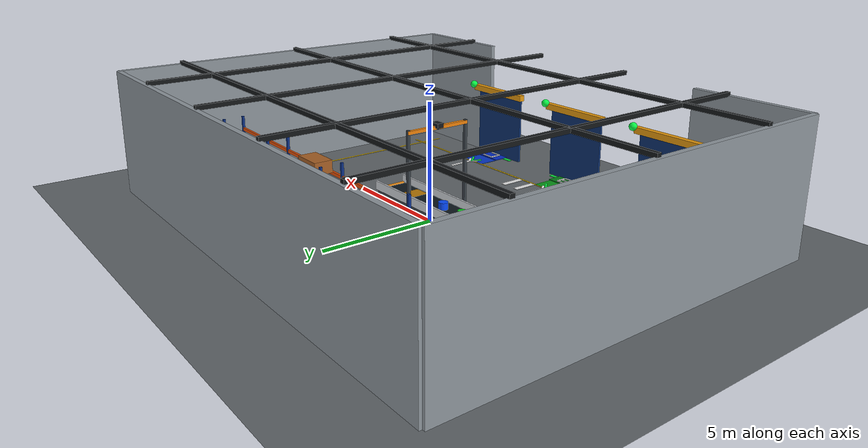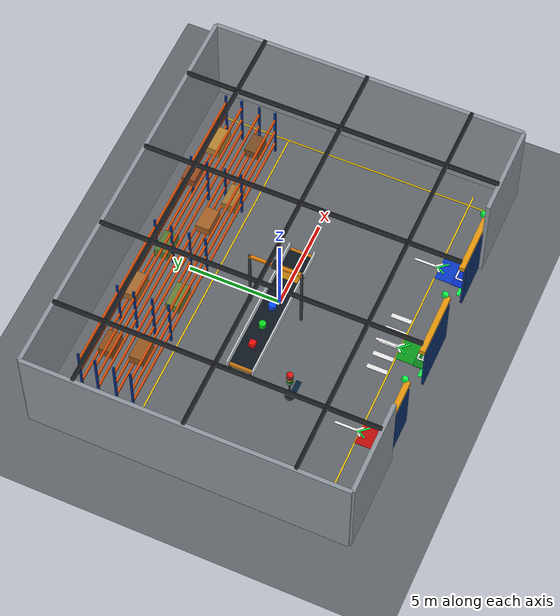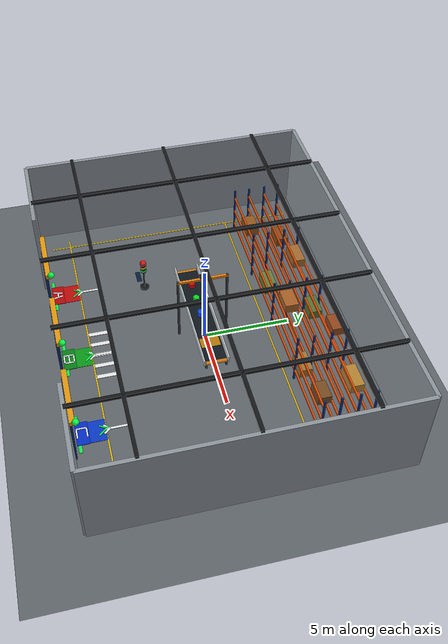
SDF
<sdf version="1.10">
 <world name="factory_test">
  <model name="ground_plane">
   <static>true</static>
   <link name="link">
    <collision name="collision">
     <geometry><plane><normal>0 0 1</normal><size>24 20</size></plane></geometry>
    </collision>
    <visual name="visual">
     <geometry><plane><normal>0 0 1</normal><size>24 20</size></plane></geometry>
     <material><ambient>0.28 0.3 0.32 1</ambient><diffuse>0.38 0.4 0.42 1</diffuse></material>
    </visual>
   </link>
  </model>
  <model name="sorting_conveyor">
   <static>true</static>
   <pose>-1 0 0 0 0 0</pose>
   <link name="conveyor">
    <collision name="belt_collision">
     <pose>0 0 0.76 0 0 0</pose>
     <geometry><box><size>7.5 1.25 0.12</size></box></geometry>
     <surface><friction><ode><mu>0.7</mu><mu2>100</mu2><fdir1>0 1 0</fdir1></ode></friction></surface>
    </collision>
    <visual name="belt">
     <pose>0 0 0.76 0 0 0</pose>
     <geometry><box><size>7.5 1.25 0.12</size></box></geometry>
     <material>
      <ambient>0.035 0.055 0.075 1</ambient>
      <diffuse>0.055 0.09 0.12 1</diffuse>
      <specular>0.35 0.35 0.35 1</specular>
     </material>
    </visual>
    <visual name="left_rail">
     <pose>0 0.69 0.94 0 0 0</pose>
     <geometry><box><size>7.7 0.08 0.38</size></box></geometry>
     <material><ambient>0.75 0.78 0.8 1</ambient><diffuse>0.82 0.84 0.86 1</diffuse></material>
    </visual>
    <visual name="right_rail">
     <pose>0 -0.69 0.94 0 0 0</pose>
     <geometry><box><size>7.7 0.08 0.38</size></box></geometry>
     <material><ambient>0.75 0.78 0.8 1</ambient><diffuse>0.82 0.84 0.86 1</diffuse></material>
    </visual>
    <visual name="frame_left">
     <pose>0 0.57 0.58 0 0 0</pose>
     <geometry><box><size>7.6 0.12 0.24</size></box></geometry>
     <material><ambient>0.18 0.21 0.24 1</ambient><diffuse>0.25 0.29 0.32 1</diffuse></material>
    </visual>
    <visual name="frame_right">
     <pose>0 -0.57 0.58 0 0 0</pose>
     <geometry><box><size>7.6 0.12 0.24</size></box></geometry>
     <material><ambient>0.18 0.21 0.24 1</ambient><diffuse>0.25 0.29 0.32 1</diffuse></material>
    </visual>
    <visual name="front_roller">
     <pose>-3.69 0 0.76 1.5708 0 0</pose>
     <geometry><cylinder><radius>0.11</radius><length>1.2</length></cylinder></geometry>
     <material><diffuse>0.8 0.48 0.08 1</diffuse></material>
    </visual>
    <visual name="rear_roller">
     <pose>3.69 0 0.76 1.5708 0 0</pose>
     <geometry><cylinder><radius>0.11</radius><length>1.2</length></cylinder></geometry>
     <material><diffuse>0.8 0.48 0.08 1</diffuse></material>
    </visual>
    <visual name="leg_1_left">
     <pose>-2.8 0.48 0.3 0 0 0</pose>
     <geometry><box><size>0.14 0.14 0.6</size></box></geometry>
     <material><diffuse>0.26 0.29 0.31 1</diffuse></material>
    </visual>
    <visual name="leg_1_right">
     <pose>-2.8 -0.48 0.3 0 0 0</pose>
     <geometry><box><size>0.14 0.14 0.6</size></box></geometry>
     <material><diffuse>0.26 0.29 0.31 1</diffuse></material>
    </visual>
    <visual name="leg_2_left">
     <pose>0 0.48 0.3 0 0 0</pose>
     <geometry><box><size>0.14 0.14 0.6</size></box></geometry>
     <material><diffuse>0.26 0.29 0.31 1</diffuse></material>
    </visual>
    <visual name="leg_2_right">
     <pose>0 -0.48 0.3 0 0 0</pose>
     <geometry><box><size>0.14 0.14 0.6</size></box></geometry>
     <material><diffuse>0.26 0.29 0.31 1</diffuse></material>
    </visual>
    <visual name="leg_3_left">
     <pose>2.8 0.48 0.3 0 0 0</pose>
     <geometry><box><size>0.14 0.14 0.6</size></box></geometry>
     <material><diffuse>0.26 0.29 0.31 1</diffuse></material>
    </visual>
    <visual name="leg_3_right">
     <pose>2.8 -0.48 0.3 0 0 0</pose>
     <geometry><box><size>0.14 0.14 0.6</size></box></geometry>
     <material><diffuse>0.26 0.29 0.31 1</diffuse></material>
    </visual>
    <visual name="pickup_zone">
     <pose>2.25 0 0.825 0 0 0</pose>
     <geometry><box><size>0.7 1.12 0.01</size></box></geometry>
     <material><ambient>0.95 0.62 0.05 0.75</ambient><diffuse>1 0.66 0.05 0.75</diffuse></material>
     <transparency>0.25</transparency>
    </visual>
   </link>
   <plugin filename="gz-sim-track-controller-system" name="gz::sim::systems::TrackController">
    <link>conveyor</link>
    <velocity_topic>/conveyor/track_cmd_vel</velocity_topic>
    <odometry_topic>/conveyor/odometry</odometry_topic>
    <odometry_publish_frequency>10</odometry_publish_frequency>
    <max_command_age>0.5</max_command_age>
    <min_velocity>-0.5</min_velocity>
    <max_velocity>0.5</max_velocity>
    <min_acceleration>-0.8</min_acceleration>
    <max_acceleration>0.8</max_acceleration>
   </plugin>
  </model>
  <model name="item_a_red_cube">
   <pose>-3.3 0 0.96 0 0 0</pose>
   <link name="item">
    <inertial><mass>0.25</mass><inertia><ixx>0.0027</ixx><iyy>0.0027</iyy><izz>0.0027</izz></inertia></inertial>
    <collision name="collision"><geometry><box><size>0.32 0.32 0.32</size></box></geometry></collision>
    <visual name="visual">
     <geometry><box><size>0.32 0.32 0.32</size></box></geometry>
     <material><ambient>0.75 0.03 0.03 1</ambient><diffuse>0.95 0.04 0.04 1</diffuse></material>
    </visual>
   </link>
  </model>
  <model name="item_b_green_cylinder">
   <pose>-2.1 0 0.96 0 0 0</pose>
   <link name="item">
    <inertial><mass>0.25</mass><inertia><ixx>0.0027</ixx><iyy>0.0027</iyy><izz>0.0027</izz></inertia></inertial>
    <collision name="collision">
     <geometry><cylinder><radius>0.18</radius><length>0.32</length></cylinder></geometry>
    </collision>
    <visual name="visual">
     <geometry><cylinder><radius>0.18</radius><length>0.32</length></cylinder></geometry>
     <material><ambient>0.03 0.55 0.08 1</ambient><diffuse>0.04 0.85 0.12 1</diffuse></material>
    </visual>
   </link>
  </model>
  <model name="item_c_blue_hex">
   <pose>-0.9 0 0.96 0 0 0</pose>
   <link name="item">
    <inertial><mass>0.25</mass><inertia><ixx>0.0027</ixx><iyy>0.0027</iyy><izz>0.0027</izz></inertia></inertial>
    <collision name="collision">
     <geometry><cylinder><radius>0.2</radius><length>0.32</length></cylinder></geometry>
    </collision>
    <visual name="visual">
     <geometry><cylinder><radius>0.2</radius><length>0.32</length></cylinder></geometry>
     <material><ambient>0.02 0.18 0.75 1</ambient><diffuse>0.03 0.3 1 1</diffuse></material>
    </visual>
   </link>
  </model>
  <model name="overhead_rgbd_camera">
   <static>true</static>
   <pose>-0.5 0 4.2 0 0 0</pose>
   <link name="camera_link">
    <visual name="body">
     <geometry><box><size>0.42 0.3 0.2</size></box></geometry>
     <material><diffuse>0.08 0.1 0.12 1</diffuse></material>
    </visual>
    <visual name="lens">
     <pose>0 0 -0.13 0 0 0</pose>
     <geometry><cylinder><radius>0.09</radius><length>0.08</length></cylinder></geometry>
     <material><diffuse>0.02 0.12 0.25 1</diffuse></material>
    </visual>
    <sensor name="rgbd_camera" type="rgbd_camera">
     <pose>0 0 -0.15 0 1.5708 0</pose>
     <always_on>true</always_on>
     <update_rate>15</update_rate>
     <topic>/factory/camera</topic>
     <camera>
      <horizontal_fov>1.35</horizontal_fov>
      <image><width>640</width><height>480</height><format>R8G8B8</format></image>
      <clip><near>0.1</near><far>12</far></clip>
      <depth_camera><clip><near>0.1</near><far>12</far></clip></depth_camera>
     </camera>
    </sensor>
   </link>
  </model>
  <model name="camera_gantry">
   <static>true</static>
   <link name="gantry">
    <visual name="left_post">
     <pose>-0.5 1.4 2.1 0 0 0</pose>
     <geometry><box><size>0.12 0.12 4.2</size></box></geometry>
     <material><diffuse>0.22 0.25 0.28 1</diffuse></material>
    </visual>
    <visual name="right_post">
     <pose>-0.5 -1.4 2.1 0 0 0</pose>
     <geometry><box><size>0.12 0.12 4.2</size></box></geometry>
     <material><diffuse>0.22 0.25 0.28 1</diffuse></material>
    </visual>
    <visual name="crossbeam">
     <pose>-0.5 0 4.1 0 0 0</pose>
     <geometry><box><size>0.14 2.9 0.14</size></box></geometry>
     <material><diffuse>0.95 0.52 0.04 1</diffuse></material>
    </visual>
   </link>
  </model>
  <model name="warehouse_zones">
   <static>true</static>
   <link name="zones">
    <visual name="zone_a">
     <pose>-5.2 -7.1 0.018 0 0 0</pose>
     <geometry><box><size>1.35 1.0 0.025</size></box></geometry>
     <material><diffuse>0.75 0.04 0.04 1</diffuse></material>
    </visual>
    <visual name="zone_b">
     <pose>0 -7.1 0.018 0 0 0</pose>
     <geometry><box><size>1.35 1.0 0.025</size></box></geometry>
     <material><diffuse>0.04 0.6 0.1 1</diffuse></material>
    </visual>
    <visual name="zone_c">
     <pose>5.2 -7.1 0.018 0 0 0</pose>
     <geometry><box><size>1.35 1.0 0.025</size></box></geometry>
     <material><diffuse>0.03 0.22 0.78 1</diffuse></material>
    </visual>
   </link>
  </model>
  <model name="warehouse_building">
   <static>true</static>
   <link name="shell">
    <collision name="west_wall_collision">
     <pose>-11 0 2.75 0 0 0</pose>
     <geometry><box><size>0.22 17 5.5</size></box></geometry>
    </collision>
    <collision name="east_wall_collision">
     <pose>11 0 2.75 0 0 0</pose>
     <geometry><box><size>0.22 17 5.5</size></box></geometry>
    </collision>
    <collision name="north_wall_collision">
     <pose>0 8.5 2.75 0 0 0</pose>
     <geometry><box><size>22 0.22 5.5</size></box></geometry>
    </collision>
    <collision name="south_wall_left_collision">
     <pose>-8.5 -8.5 2.75 0 0 0</pose>
     <geometry><box><size>5 0.22 5.5</size></box></geometry>
    </collision>
    <collision name="south_wall_right_collision">
     <pose>8.5 -8.5 2.75 0 0 0</pose>
     <geometry><box><size>5 0.22 5.5</size></box></geometry>
    </collision>
    <visual name="west_wall">
     <pose>-11 0 2.75 0 0 0</pose>
     <geometry><box><size>0.22 17 5.5</size></box></geometry>
     <material><diffuse>0.56 0.59 0.62 1</diffuse></material>
    </visual>
    <visual name="east_wall">
     <pose>11 0 2.75 0 0 0</pose>
     <geometry><box><size>0.22 17 5.5</size></box></geometry>
     <material><diffuse>0.56 0.59 0.62 1</diffuse></material>
    </visual>
    <visual name="north_wall">
     <pose>0 8.5 2.75 0 0 0</pose>
     <geometry><box><size>22 0.22 5.5</size></box></geometry>
     <material><diffuse>0.56 0.59 0.62 1</diffuse></material>
    </visual>
    <visual name="south_wall_left">
     <pose>-8.5 -8.5 2.75 0 0 0</pose>
     <geometry><box><size>5 0.22 5.5</size></box></geometry>
     <material><diffuse>0.56 0.59 0.62 1</diffuse></material>
    </visual>
    <visual name="south_wall_right">
     <pose>8.5 -8.5 2.75 0 0 0</pose>
     <geometry><box><size>5 0.22 5.5</size></box></geometry>
     <material><diffuse>0.56 0.59 0.62 1</diffuse></material>
    </visual>
    <visual name="roof_beam_west">
     <pose>-7.5 0 5.55 0 0 0</pose>
     <geometry><box><size>0.18 17 0.18</size></box></geometry>
     <material><diffuse>0.08 0.09 0.1 1</diffuse></material>
    </visual>
    <visual name="roof_beam_mid_west">
     <pose>-2.5 0 5.55 0 0 0</pose>
     <geometry><box><size>0.18 17 0.18</size></box></geometry>
     <material><diffuse>0.08 0.09 0.1 1</diffuse></material>
    </visual>
    <visual name="roof_beam_mid_east">
     <pose>2.5 0 5.55 0 0 0</pose>
     <geometry><box><size>0.18 17 0.18</size></box></geometry>
     <material><diffuse>0.08 0.09 0.1 1</diffuse></material>
    </visual>
    <visual name="roof_beam_east">
     <pose>7.5 0 5.55 0 0 0</pose>
     <geometry><box><size>0.18 17 0.18</size></box></geometry>
     <material><diffuse>0.08 0.09 0.1 1</diffuse></material>
    </visual>
    <visual name="roof_cross_north">
     <pose>0 5.7 5.55 0 0 0</pose>
     <geometry><box><size>22 0.18 0.18</size></box></geometry>
     <material><diffuse>0.08 0.09 0.1 1</diffuse></material>
    </visual>
    <visual name="roof_cross_center">
     <pose>0 0 5.55 0 0 0</pose>
     <geometry><box><size>22 0.18 0.18</size></box></geometry>
     <material><diffuse>0.08 0.09 0.1 1</diffuse></material>
    </visual>
    <visual name="roof_cross_south">
     <pose>0 -5.7 5.55 0 0 0</pose>
     <geometry><box><size>22 0.18 0.18</size></box></geometry>
     <material><diffuse>0.08 0.09 0.1 1</diffuse></material>
    </visual>
    <visual name="dock_door_a">
     <pose>-5.2 -8.37 1.55 0 0 0</pose>
     <geometry><box><size>3.0 0.12 3.1</size></box></geometry>
     <material><diffuse>0.04 0.18 0.42 1</diffuse></material>
    </visual>
    <visual name="dock_door_b">
     <pose>0 -8.37 1.55 0 0 0</pose>
     <geometry><box><size>3.0 0.12 3.1</size></box></geometry>
     <material><diffuse>0.04 0.18 0.42 1</diffuse></material>
    </visual>
    <visual name="dock_door_c">
     <pose>5.2 -8.37 1.55 0 0 0</pose>
     <geometry><box><size>3.0 0.12 3.1</size></box></geometry>
     <material><diffuse>0.04 0.18 0.42 1</diffuse></material>
    </visual>
    <visual name="dock_header_a">
     <pose>-5.2 -8.25 3.3 0 0 0</pose>
     <geometry><box><size>3.4 0.28 0.28</size></box></geometry>
     <material><diffuse>0.9 0.6 0.05 1</diffuse></material>
    </visual>
    <visual name="dock_header_b">
     <pose>0 -8.25 3.3 0 0 0</pose>
     <geometry><box><size>3.4 0.28 0.28</size></box></geometry>
     <material><diffuse>0.9 0.6 0.05 1</diffuse></material>
    </visual>
    <visual name="dock_header_c">
     <pose>5.2 -8.25 3.3 0 0 0</pose>
     <geometry><box><size>3.4 0.28 0.28</size></box></geometry>
     <material><diffuse>0.9 0.6 0.05 1</diffuse></material>
    </visual>
   </link>
  </model>
  <model name="warehouse_racking">
   <static>true</static>
   <link name="racks">
    <collision name="rack_north_collision">
     <pose>0 6.4 1.65 0 0 0</pose>
     <geometry><box><size>17.6 1.0 3.3</size></box></geometry>
    </collision>
    <collision name="rack_south_collision">
     <pose>0 4.5 1.65 0 0 0</pose>
     <geometry><box><size>17.6 1.0 3.3</size></box></geometry>
    </collision>
    <visual name="n_post_1a">
     <pose>-8.5 5.95 1.65 0 0 0</pose>
     <geometry><box><size>0.1 0.1 3.3</size></box></geometry>
     <material><diffuse>0.05 0.2 0.55 1</diffuse></material>
    </visual>
    <visual name="n_post_1b">
     <pose>-8.5 6.85 1.65 0 0 0</pose>
     <geometry><box><size>0.1 0.1 3.3</size></box></geometry>
     <material><diffuse>0.05 0.2 0.55 1</diffuse></material>
    </visual>
    <visual name="n_post_2a">
     <pose>-4.25 5.95 1.65 0 0 0</pose>
     <geometry><box><size>0.1 0.1 3.3</size></box></geometry>
     <material><diffuse>0.05 0.2 0.55 1</diffuse></material>
    </visual>
    <visual name="n_post_2b">
     <pose>-4.25 6.85 1.65 0 0 0</pose>
     <geometry><box><size>0.1 0.1 3.3</size></box></geometry>
     <material><diffuse>0.05 0.2 0.55 1</diffuse></material>
    </visual>
    <visual name="n_post_3a">
     <pose>0 5.95 1.65 0 0 0</pose>
     <geometry><box><size>0.1 0.1 3.3</size></box></geometry>
     <material><diffuse>0.05 0.2 0.55 1</diffuse></material>
    </visual>
    <visual name="n_post_3b">
     <pose>0 6.85 1.65 0 0 0</pose>
     <geometry><box><size>0.1 0.1 3.3</size></box></geometry>
     <material><diffuse>0.05 0.2 0.55 1</diffuse></material>
    </visual>
    <visual name="n_post_4a">
     <pose>4.25 5.95 1.65 0 0 0</pose>
     <geometry><box><size>0.1 0.1 3.3</size></box></geometry>
     <material><diffuse>0.05 0.2 0.55 1</diffuse></material>
    </visual>
    <visual name="n_post_4b">
     <pose>4.25 6.85 1.65 0 0 0</pose>
     <geometry><box><size>0.1 0.1 3.3</size></box></geometry>
     <material><diffuse>0.05 0.2 0.55 1</diffuse></material>
    </visual>
    <visual name="n_post_5a">
     <pose>8.5 5.95 1.65 0 0 0</pose>
     <geometry><box><size>0.1 0.1 3.3</size></box></geometry>
     <material><diffuse>0.05 0.2 0.55 1</diffuse></material>
    </visual>
    <visual name="n_post_5b">
     <pose>8.5 6.85 1.65 0 0 0</pose>
     <geometry><box><size>0.1 0.1 3.3</size></box></geometry>
     <material><diffuse>0.05 0.2 0.55 1</diffuse></material>
    </visual>
    <visual name="s_post_1a">
     <pose>-8.5 4.05 1.65 0 0 0</pose>
     <geometry><box><size>0.1 0.1 3.3</size></box></geometry>
     <material><diffuse>0.05 0.2 0.55 1</diffuse></material>
    </visual>
    <visual name="s_post_1b">
     <pose>-8.5 4.95 1.65 0 0 0</pose>
     <geometry><box><size>0.1 0.1 3.3</size></box></geometry>
     <material><diffuse>0.05 0.2 0.55 1</diffuse></material>
    </visual>
    <visual name="s_post_2a">
     <pose>-4.25 4.05 1.65 0 0 0</pose>
     <geometry><box><size>0.1 0.1 3.3</size></box></geometry>
     <material><diffuse>0.05 0.2 0.55 1</diffuse></material>
    </visual>
    <visual name="s_post_2b">
     <pose>-4.25 4.95 1.65 0 0 0</pose>
     <geometry><box><size>0.1 0.1 3.3</size></box></geometry>
     <material><diffuse>0.05 0.2 0.55 1</diffuse></material>
    </visual>
    <visual name="s_post_3a">
     <pose>0 4.05 1.65 0 0 0</pose>
     <geometry><box><size>0.1 0.1 3.3</size></box></geometry>
     <material><diffuse>0.05 0.2 0.55 1</diffuse></material>
    </visual>
    <visual name="s_post_3b">
     <pose>0 4.95 1.65 0 0 0</pose>
     <geometry><box><size>0.1 0.1 3.3</size></box></geometry>
     <material><diffuse>0.05 0.2 0.55 1</diffuse></material>
    </visual>
    <visual name="s_post_4a">
     <pose>4.25 4.05 1.65 0 0 0</pose>
     <geometry><box><size>0.1 0.1 3.3</size></box></geometry>
     <material><diffuse>0.05 0.2 0.55 1</diffuse></material>
    </visual>
    <visual name="s_post_4b">
     <pose>4.25 4.95 1.65 0 0 0</pose>
     <geometry><box><size>0.1 0.1 3.3</size></box></geometry>
     <material><diffuse>0.05 0.2 0.55 1</diffuse></material>
    </visual>
    <visual name="s_post_5a">
     <pose>8.5 4.05 1.65 0 0 0</pose>
     <geometry><box><size>0.1 0.1 3.3</size></box></geometry>
     <material><diffuse>0.05 0.2 0.55 1</diffuse></material>
    </visual>
    <visual name="s_post_5b">
     <pose>8.5 4.95 1.65 0 0 0</pose>
     <geometry><box><size>0.1 0.1 3.3</size></box></geometry>
     <material><diffuse>0.05 0.2 0.55 1</diffuse></material>
    </visual>
    <visual name="n_beam_low_front">
     <pose>0 5.95 0.72 0 0 0</pose>
     <geometry><box><size>17 0.09 0.14</size></box></geometry>
     <material><diffuse>0.92 0.32 0.03 1</diffuse></material>
    </visual>
    <visual name="n_beam_low_back">
     <pose>0 6.85 0.72 0 0 0</pose>
     <geometry><box><size>17 0.09 0.14</size></box></geometry>
     <material><diffuse>0.92 0.32 0.03 1</diffuse></material>
    </visual>
    <visual name="n_beam_mid_front">
     <pose>0 5.95 1.72 0 0 0</pose>
     <geometry><box><size>17 0.09 0.14</size></box></geometry>
     <material><diffuse>0.92 0.32 0.03 1</diffuse></material>
    </visual>
    <visual name="n_beam_mid_back">
     <pose>0 6.85 1.72 0 0 0</pose>
     <geometry><box><size>17 0.09 0.14</size></box></geometry>
     <material><diffuse>0.92 0.32 0.03 1</diffuse></material>
    </visual>
    <visual name="n_beam_top_front">
     <pose>0 5.95 2.72 0 0 0</pose>
     <geometry><box><size>17 0.09 0.14</size></box></geometry>
     <material><diffuse>0.92 0.32 0.03 1</diffuse></material>
    </visual>
    <visual name="n_beam_top_back">
     <pose>0 6.85 2.72 0 0 0</pose>
     <geometry><box><size>17 0.09 0.14</size></box></geometry>
     <material><diffuse>0.92 0.32 0.03 1</diffuse></material>
    </visual>
    <visual name="s_beam_low_front">
     <pose>0 4.05 0.72 0 0 0</pose>
     <geometry><box><size>17 0.09 0.14</size></box></geometry>
     <material><diffuse>0.92 0.32 0.03 1</diffuse></material>
    </visual>
    <visual name="s_beam_low_back">
     <pose>0 4.95 0.72 0 0 0</pose>
     <geometry><box><size>17 0.09 0.14</size></box></geometry>
     <material><diffuse>0.92 0.32 0.03 1</diffuse></material>
    </visual>
    <visual name="s_beam_mid_front">
     <pose>0 4.05 1.72 0 0 0</pose>
     <geometry><box><size>17 0.09 0.14</size></box></geometry>
     <material><diffuse>0.92 0.32 0.03 1</diffuse></material>
    </visual>
    <visual name="s_beam_mid_back">
     <pose>0 4.95 1.72 0 0 0</pose>
     <geometry><box><size>17 0.09 0.14</size></box></geometry>
     <material><diffuse>0.92 0.32 0.03 1</diffuse></material>
    </visual>
    <visual name="s_beam_top_front">
     <pose>0 4.05 2.72 0 0 0</pose>
     <geometry><box><size>17 0.09 0.14</size></box></geometry>
     <material><diffuse>0.92 0.32 0.03 1</diffuse></material>
    </visual>
    <visual name="s_beam_top_back">
     <pose>0 4.95 2.72 0 0 0</pose>
     <geometry><box><size>17 0.09 0.14</size></box></geometry>
     <material><diffuse>0.92 0.32 0.03 1</diffuse></material>
    </visual>
    <visual name="cargo_n_1">
     <pose>-6.2 6.4 1.03 0 0 0</pose>
     <geometry><box><size>1.2 0.75 0.55</size></box></geometry>
     <material><diffuse>0.55 0.3 0.1 1</diffuse></material>
    </visual>
    <visual name="cargo_n_2">
     <pose>-3.2 6.4 2.03 0 0 0</pose>
     <geometry><box><size>1.4 0.72 0.52</size></box></geometry>
     <material><diffuse>0.65 0.42 0.18 1</diffuse></material>
    </visual>
    <visual name="cargo_n_3">
     <pose>0.2 6.4 1.03 0 0 0</pose>
     <geometry><box><size>1.3 0.75 0.55</size></box></geometry>
     <material><diffuse>0.34 0.46 0.2 1</diffuse></material>
    </visual>
    <visual name="cargo_n_4">
     <pose>3.5 6.4 3.03 0 0 0</pose>
     <geometry><box><size>1.1 0.72 0.48</size></box></geometry>
     <material><diffuse>0.58 0.28 0.12 1</diffuse></material>
    </visual>
    <visual name="cargo_n_5">
     <pose>6.5 6.4 2.03 0 0 0</pose>
     <geometry><box><size>1.45 0.75 0.52</size></box></geometry>
     <material><diffuse>0.72 0.52 0.2 1</diffuse></material>
    </visual>
    <visual name="cargo_s_1">
     <pose>-6.5 4.5 2.03 0 0 0</pose>
     <geometry><box><size>1.2 0.75 0.55</size></box></geometry>
     <material><diffuse>0.58 0.34 0.12 1</diffuse></material>
    </visual>
    <visual name="cargo_s_2">
     <pose>-2.4 4.5 1.03 0 0 0</pose>
     <geometry><box><size>1.4 0.72 0.52</size></box></geometry>
     <material><diffuse>0.4 0.5 0.22 1</diffuse></material>
    </visual>
    <visual name="cargo_s_3">
     <pose>1.2 4.5 3.03 0 0 0</pose>
     <geometry><box><size>1.25 0.75 0.5</size></box></geometry>
     <material><diffuse>0.66 0.38 0.15 1</diffuse></material>
    </visual>
    <visual name="cargo_s_4">
     <pose>4.2 4.5 1.03 0 0 0</pose>
     <geometry><box><size>1.3 0.72 0.54</size></box></geometry>
     <material><diffuse>0.64 0.46 0.2 1</diffuse></material>
    </visual>
    <visual name="cargo_s_5">
     <pose>7.0 4.5 2.03 0 0 0</pose>
     <geometry><box><size>1.1 0.75 0.5</size></box></geometry>
     <material><diffuse>0.48 0.3 0.13 1</diffuse></material>
    </visual>
   </link>
  </model>
  <model name="warehouse_floor_markings">
   <static>true</static>
   <link name="markings">
    <visual name="aisle_left">
     <pose>-9.4 0 0.014 0 0 0</pose>
     <geometry><box><size>0.08 15.5 0.02</size></box></geometry>
     <material><diffuse>0.95 0.78 0.04 1</diffuse></material>
    </visual>
    <visual name="aisle_right">
     <pose>9.4 0 0.014 0 0 0</pose>
     <geometry><box><size>0.08 15.5 0.02</size></box></geometry>
     <material><diffuse>0.95 0.78 0.04 1</diffuse></material>
    </visual>
    <visual name="rack_lane_front">
     <pose>0 3.65 0.014 0 0 0</pose>
     <geometry><box><size>18.8 0.08 0.02</size></box></geometry>
     <material><diffuse>0.95 0.78 0.04 1</diffuse></material>
    </visual>
    <visual name="dock_lane">
     <pose>0 -6.6 0.014 0 0 0</pose>
     <geometry><box><size>20 0.08 0.02</size></box></geometry>
     <material><diffuse>0.95 0.78 0.04 1</diffuse></material>
    </visual>
    <visual name="crosswalk_1">
     <pose>-1.6 -6.0 0.015 0 0 0</pose>
     <geometry><box><size>0.25 1.1 0.02</size></box></geometry>
     <material><diffuse>0.92 0.92 0.92 1</diffuse></material>
    </visual>
    <visual name="crosswalk_2">
     <pose>-0.8 -6.0 0.015 0 0 0</pose>
     <geometry><box><size>0.25 1.1 0.02</size></box></geometry>
     <material><diffuse>0.92 0.92 0.92 1</diffuse></material>
    </visual>
    <visual name="crosswalk_3">
     <pose>0 -6.0 0.015 0 0 0</pose>
     <geometry><box><size>0.25 1.1 0.02</size></box></geometry>
     <material><diffuse>0.92 0.92 0.92 1</diffuse></material>
    </visual>
    <visual name="crosswalk_4">
     <pose>0.8 -6.0 0.015 0 0 0</pose>
     <geometry><box><size>0.25 1.1 0.02</size></box></geometry>
     <material><diffuse>0.92 0.92 0.92 1</diffuse></material>
    </visual>
    <visual name="crosswalk_5">
     <pose>1.6 -6.0 0.015 0 0 0</pose>
     <geometry><box><size>0.25 1.1 0.02</size></box></geometry>
     <material><diffuse>0.92 0.92 0.92 1</diffuse></material>
    </visual>
   </link>
  </model>
  <model name="andon_tower">
   <static>true</static>
   <pose>-4.75 -2.65 0 0 0 0</pose>
   <link name="tower">
    <visual name="andon_base">
     <pose>0 0 0.05 0 0 0</pose>
     <geometry><cylinder><radius>0.28</radius><length>0.1</length></cylinder></geometry>
     <material><diffuse>0.06 0.07 0.08 1</diffuse></material>
    </visual>
    <visual name="andon_pole">
     <pose>0 0 0.85 0 0 0</pose>
     <geometry><cylinder><radius>0.045</radius><length>1.55</length></cylinder></geometry>
     <material><diffuse>0.18 0.19 0.2 1</diffuse></material>
    </visual>
    <visual name="andon_housing">
     <pose>0 0 1.7 0 0 0</pose>
     <geometry><cylinder><radius>0.18</radius><length>0.74</length></cylinder></geometry>
     <material><diffuse>0.04 0.045 0.05 1</diffuse></material>
    </visual>
    <visual name="andon_green_lamp">
     <pose>0 0 1.47 0 0 0</pose>
     <geometry><sphere><radius>0.19</radius></sphere></geometry>
     <material>
      <ambient>0.02 0.8 0.22 1</ambient>
      <diffuse>0.04 1 0.28 1</diffuse>
      <emissive>0.02 0.45 0.12 1</emissive>
     </material>
    </visual>
    <visual name="andon_yellow_lamp">
     <pose>0 0 1.72 0 0 0</pose>
     <geometry><sphere><radius>0.19</radius></sphere></geometry>
     <material>
      <ambient>0.95 0.72 0.05 1</ambient>
      <diffuse>1 0.8 0.08 1</diffuse>
      <emissive>0.45 0.28 0.02 1</emissive>
     </material>
    </visual>
    <visual name="andon_red_lamp">
     <pose>0 0 1.97 0 0 0</pose>
     <geometry><sphere><radius>0.19</radius></sphere></geometry>
     <material>
      <ambient>0.9 0.04 0.04 1</ambient>
      <diffuse>1 0.06 0.06 1</diffuse>
      <emissive>0.45 0.02 0.02 1</emissive>
     </material>
    </visual>
    <visual name="andon_label_panel">
     <pose>0.02 -0.32 0.96 1.5708 0 0</pose>
     <geometry><box><size>0.82 0.03 0.28</size></box></geometry>
     <material><diffuse>0.02 0.12 0.22 1</diffuse></material>
    </visual>
   </link>
  </model>
  <model name="dock_signage">
   <static>true</static>
   <link name="signage">
    <visual name="dock_label_a_plate">
     <pose>-5.2 -7.88 0.055 0 0 0</pose>
     <geometry><box><size>1.45 0.7 0.04</size></box></geometry>
     <material><diffuse>0.7 0.03 0.04 1</diffuse></material>
    </visual>
    <visual name="dock_label_b_plate">
     <pose>0 -7.88 0.055 0 0 0</pose>
     <geometry><box><size>1.45 0.7 0.04</size></box></geometry>
     <material><diffuse>0.03 0.5 0.1 1</diffuse></material>
    </visual>
    <visual name="dock_label_c_plate">
     <pose>5.2 -7.88 0.055 0 0 0</pose>
     <geometry><box><size>1.45 0.7 0.04</size></box></geometry>
     <material><diffuse>0.02 0.18 0.78 1</diffuse></material>
    </visual>
    <visual name="dock_label_a_left_stroke">
     <pose>-5.38 -7.88 0.09 0 0 -0.22</pose>
     <geometry><box><size>0.09 0.55 0.035</size></box></geometry>
     <material><diffuse>1 1 1 1</diffuse></material>
    </visual>
    <visual name="dock_label_a_right_stroke">
     <pose>-5.02 -7.88 0.09 0 0 0.22</pose>
     <geometry><box><size>0.09 0.55 0.035</size></box></geometry>
     <material><diffuse>1 1 1 1</diffuse></material>
    </visual>
    <visual name="dock_label_a_bar">
     <pose>-5.2 -7.88 0.095 0 0 0</pose>
     <geometry><box><size>0.42 0.08 0.035</size></box></geometry>
     <material><diffuse>1 1 1 1</diffuse></material>
    </visual>
    <visual name="dock_label_b_spine">
     <pose>-0.26 -7.88 0.09 0 0 0</pose>
     <geometry><box><size>0.08 0.56 0.035</size></box></geometry>
     <material><diffuse>1 1 1 1</diffuse></material>
    </visual>
    <visual name="dock_label_b_top">
     <pose>0 -7.61 0.09 0 0 0</pose>
     <geometry><box><size>0.52 0.08 0.035</size></box></geometry>
     <material><diffuse>1 1 1 1</diffuse></material>
    </visual>
    <visual name="dock_label_b_mid">
     <pose>0 -7.88 0.09 0 0 0</pose>
     <geometry><box><size>0.48 0.08 0.035</size></box></geometry>
     <material><diffuse>1 1 1 1</diffuse></material>
    </visual>
    <visual name="dock_label_b_bottom">
     <pose>0 -8.15 0.09 0 0 0</pose>
     <geometry><box><size>0.52 0.08 0.035</size></box></geometry>
     <material><diffuse>1 1 1 1</diffuse></material>
    </visual>
    <visual name="dock_label_b_right">
     <pose>0.28 -7.88 0.09 0 0 0</pose>
     <geometry><box><size>0.08 0.46 0.035</size></box></geometry>
     <material><diffuse>1 1 1 1</diffuse></material>
    </visual>
    <visual name="dock_label_c_top">
     <pose>5.2 -7.61 0.09 0 0 0</pose>
     <geometry><box><size>0.58 0.08 0.035</size></box></geometry>
     <material><diffuse>1 1 1 1</diffuse></material>
    </visual>
    <visual name="dock_label_c_left">
     <pose>4.91 -7.88 0.09 0 0 0</pose>
     <geometry><box><size>0.08 0.54 0.035</size></box></geometry>
     <material><diffuse>1 1 1 1</diffuse></material>
    </visual>
    <visual name="dock_label_c_bottom">
     <pose>5.2 -8.15 0.09 0 0 0</pose>
     <geometry><box><size>0.58 0.08 0.035</size></box></geometry>
     <material><diffuse>1 1 1 1</diffuse></material>
    </visual>
    <visual name="dock_open_pad_a">
     <pose>-5.2 -8.08 0.03 0 0 0</pose>
     <geometry><box><size>2.35 0.18 0.03</size></box></geometry>
     <material><diffuse>0.05 0.95 0.28 1</diffuse></material>
    </visual>
    <visual name="dock_open_pad_b">
     <pose>0 -8.08 0.03 0 0 0</pose>
     <geometry><box><size>2.35 0.18 0.03</size></box></geometry>
     <material><diffuse>0.05 0.95 0.28 1</diffuse></material>
    </visual>
    <visual name="dock_open_pad_c">
     <pose>5.2 -8.08 0.03 0 0 0</pose>
     <geometry><box><size>2.35 0.18 0.03</size></box></geometry>
     <material><diffuse>0.05 0.95 0.28 1</diffuse></material>
    </visual>
    <visual name="dock_lamp_a">
     <pose>-3.48 -8.08 3.45 0 0 0</pose>
     <geometry><sphere><radius>0.18</radius></sphere></geometry>
     <material><diffuse>0.04 1 0.28 1</diffuse><emissive>0.02 0.55 0.13 1</emissive></material>
    </visual>
    <visual name="dock_lamp_b">
     <pose>1.72 -8.08 3.45 0 0 0</pose>
     <geometry><sphere><radius>0.18</radius></sphere></geometry>
     <material><diffuse>0.04 1 0.28 1</diffuse><emissive>0.02 0.55 0.13 1</emissive></material>
    </visual>
    <visual name="dock_lamp_c">
     <pose>6.92 -8.08 3.45 0 0 0</pose>
     <geometry><sphere><radius>0.18</radius></sphere></geometry>
     <material><diffuse>0.04 1 0.28 1</diffuse><emissive>0.02 0.55 0.13 1</emissive></material>
    </visual>
    <visual name="dock_check_a_short">
     <pose>-5.37 -6.78 0.065 0 0 -0.55</pose>
     <geometry><box><size>0.08 0.38 0.035</size></box></geometry>
     <material><diffuse>0.04 1 0.28 1</diffuse></material>
    </visual>
    <visual name="dock_check_a_long">
     <pose>-5.08 -6.73 0.065 0 0 0.72</pose>
     <geometry><box><size>0.08 0.72 0.035</size></box></geometry>
     <material><diffuse>0.04 1 0.28 1</diffuse></material>
    </visual>
    <visual name="dock_check_b_short">
     <pose>-0.17 -6.78 0.065 0 0 -0.55</pose>
     <geometry><box><size>0.08 0.38 0.035</size></box></geometry>
     <material><diffuse>0.04 1 0.28 1</diffuse></material>
    </visual>
    <visual name="dock_check_b_long">
     <pose>0.12 -6.73 0.065 0 0 0.72</pose>
     <geometry><box><size>0.08 0.72 0.035</size></box></geometry>
     <material><diffuse>0.04 1 0.28 1</diffuse></material>
    </visual>
    <visual name="dock_check_c_short">
     <pose>5.03 -6.78 0.065 0 0 -0.55</pose>
     <geometry><box><size>0.08 0.38 0.035</size></box></geometry>
     <material><diffuse>0.04 1 0.28 1</diffuse></material>
    </visual>
    <visual name="dock_check_c_long">
     <pose>5.32 -6.73 0.065 0 0 0.72</pose>
     <geometry><box><size>0.08 0.72 0.035</size></box></geometry>
     <material><diffuse>0.04 1 0.28 1</diffuse></material>
    </visual>
    <visual name="dock_arrow_a_lane">
     <pose>-5.2 -5.95 0.035 0 0 0</pose>
     <geometry><box><size>0.12 1.35 0.03</size></box></geometry>
     <material><diffuse>1 1 1 1</diffuse></material>
    </visual>
    <visual name="dock_arrow_a_head_l">
     <pose>-5.34 -6.56 0.04 0 0 -0.72</pose>
     <geometry><box><size>0.1 0.42 0.03</size></box></geometry>
     <material><diffuse>1 1 1 1</diffuse></material>
    </visual>
    <visual name="dock_arrow_a_head_r">
     <pose>-5.06 -6.56 0.04 0 0 0.72</pose>
     <geometry><box><size>0.1 0.42 0.03</size></box></geometry>
     <material><diffuse>1 1 1 1</diffuse></material>
    </visual>
    <visual name="dock_arrow_b_lane">
     <pose>0 -5.95 0.035 0 0 0</pose>
     <geometry><box><size>0.12 1.35 0.03</size></box></geometry>
     <material><diffuse>1 1 1 1</diffuse></material>
    </visual>
    <visual name="dock_arrow_b_head_l">
     <pose>-0.14 -6.56 0.04 0 0 -0.72</pose>
     <geometry><box><size>0.1 0.42 0.03</size></box></geometry>
     <material><diffuse>1 1 1 1</diffuse></material>
    </visual>
    <visual name="dock_arrow_b_head_r">
     <pose>0.14 -6.56 0.04 0 0 0.72</pose>
     <geometry><box><size>0.1 0.42 0.03</size></box></geometry>
     <material><diffuse>1 1 1 1</diffuse></material>
    </visual>
    <visual name="dock_arrow_c_lane">
     <pose>5.2 -5.95 0.035 0 0 0</pose>
     <geometry><box><size>0.12 1.35 0.03</size></box></geometry>
     <material><diffuse>1 1 1 1</diffuse></material>
    </visual>
    <visual name="dock_arrow_c_head_l">
     <pose>5.06 -6.56 0.04 0 0 -0.72</pose>
     <geometry><box><size>0.1 0.42 0.03</size></box></geometry>
     <material><diffuse>1 1 1 1</diffuse></material>
    </visual>
    <visual name="dock_arrow_c_head_r">
     <pose>5.34 -6.56 0.04 0 0 0.72</pose>
     <geometry><box><size>0.1 0.42 0.03</size></box></geometry>
     <material><diffuse>1 1 1 1</diffuse></material>
    </visual>
   </link>
  </model>
 </world>
</sdf>
